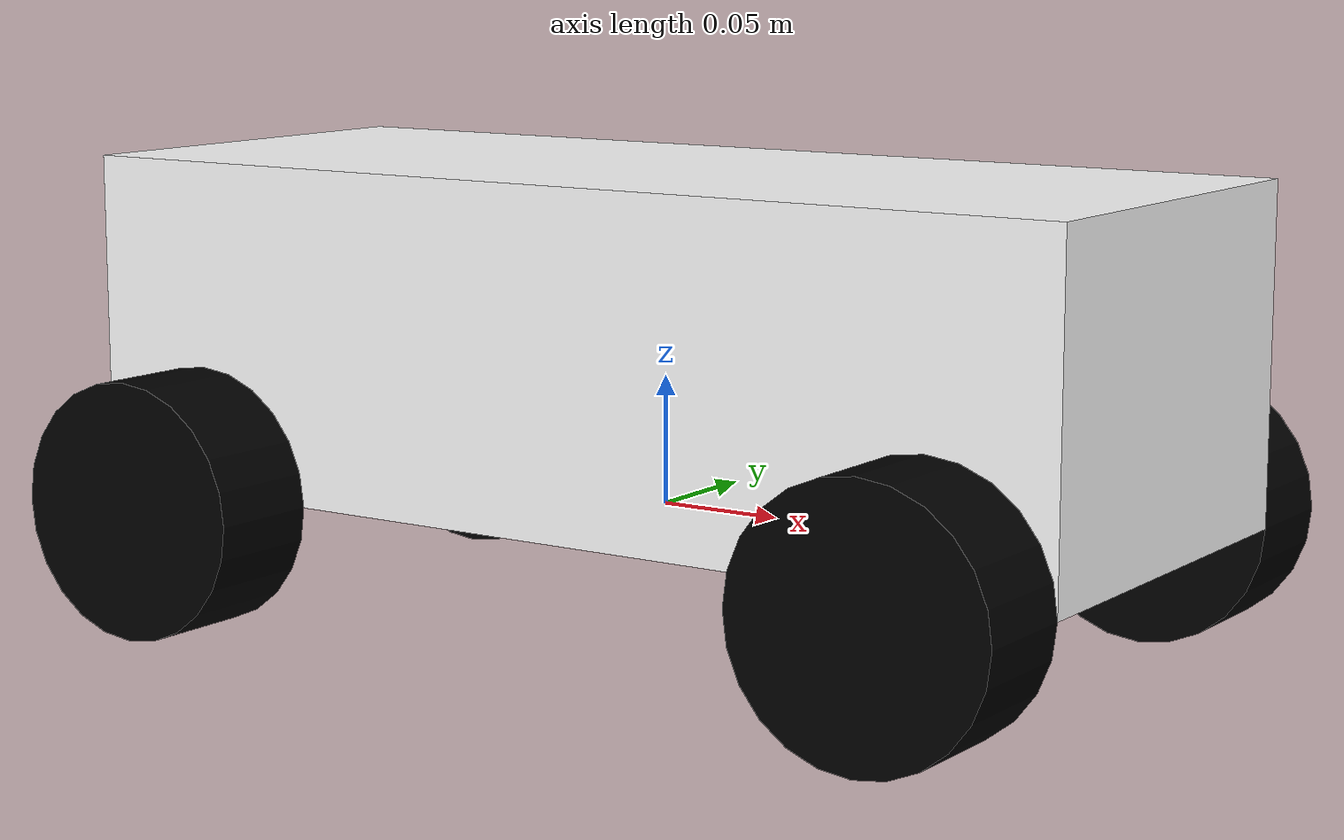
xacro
<?xml version="1.0"?>
<robot xmlns:xacro="http://www.ros.org/wiki/xacro"  >

    <xacro:include filename="inertial_macros.xacro"/>

    <material name="white">
        <color rgba="1 1 1 1" />
    </material>

    <material name="orange">
        <color rgba="1 0.3 0.1 1" />
    </material>

    <material name="blue">
        <color rgba="0.2 0.2 1 1" />
    </material>

    <material name="black">
        <color rgba="0 0 0 1" />
    </material>

    <!-- BASE LINK -->
    <link name="base_link">

    </link>

    <!-- CHASSIS LINK-->

    <joint name="chassis_joint" type="fixed">
        <parent link="base_link"/>
        <child link="chassis"/>
        <origin xyz="-0.21 0 0"/>
    </joint>

    <link name="chassis">
        <visual>
            <origin xyz="0.21 0 0.065"/>
            <geometry>
                <box size="0.42 0.17 0.13"/>
            </geometry>
            <material name="white"/>
        </visual>
        <collision>
            <origin xyz="0.21 0 0.065"/>
            <geometry>
                <box size="0.42 0.17 0.13"/>
            </geometry>
        </collision>
        <xacro:inertial_box mass="0.75" x="0.42" y="0.17" z="0.13">
            <origin xyz="0.21 0 0.065" rpy="0 0 0"/>
        </xacro:inertial_box>

    </link>

    <gazebo reference="chassis">
        <material>Gazebo/White</material>
    </gazebo>

    <!-- REAR LEFT WHEEL -->

    <joint name="rear_left_wheel_joint" type="continuous">
        <parent link="base_link"/>
        <child link="rear_left_wheel"/>
        <origin xyz="-0.16 0.1075 0" rpy="-${pi/2} 0 0"/>
        <axis xyz="0 0 1"/>
    </joint>

    <link name="rear_left_wheel">
        <visual>
            <geometry>
                <cylinder length="0.045" radius="0.05" />
            </geometry>
            <material name="black"/>
        </visual>
        <collision>
            <geometry>
                <cylinder length="0.045" radius="0.05" />
            </geometry>
        </collision>
        <xacro:inertial_cylinder mass="0.1" length="0.045" radius="0.05">
            <origin xyz="0 0 0" rpy="0 0 0"/>
        </xacro:inertial_cylinder>
    </link>

    <gazebo reference="rear_left_wheel">
        <material>Gazebo/Black</material>
    </gazebo>

    <!-- REAR RIGHT WHEEL -->

    <joint name="rear_right_wheel_joint" type="continuous">
        <parent link="base_link"/>
        <child link="rear_right_wheel"/>
        <origin xyz="-0.16 -0.1075 0" rpy="${pi/2} 0 0"/>
        <axis xyz="0 0 -1"/>
    </joint>

    <link name="rear_right_wheel">
        <visual>
            <geometry>
                <cylinder length="0.045" radius="0.05" />
            </geometry>
            <material name="black"/>
        </visual>
        <collision>
            <geometry>
                <cylinder length="0.045" radius="0.05" />
            </geometry>
        </collision>
        <xacro:inertial_cylinder mass="0.1" length="0.045" radius="0.05">
            <origin xyz="0 0 0" rpy="0 0 0"/>
        </xacro:inertial_cylinder>
    </link>

    <gazebo reference="rear_right_wheel">
        <material>Gazebo/Black</material>
    </gazebo>

        <!-- FRONT LEFT WHEEL -->

    <joint name="front_left_wheel_joint" type="continuous">
        <parent link="base_link"/>
        <child link="front_left_wheel"/>
        <origin xyz="0.16 0.1075 0" rpy="-${pi/2} 0 0"/>
        <axis xyz="0 0 1"/>
    </joint>

    <link name="front_left_wheel">
        <visual>
            <geometry>
                <cylinder length="0.045" radius="0.05" />
            </geometry>
            <material name="black"/>
        </visual>
        <collision>
            <geometry>
                <cylinder length="0.045" radius="0.05" />
            </geometry>
        </collision>
        <xacro:inertial_cylinder mass="0.1" length="0.045" radius="0.05">
            <origin xyz="0 0 0" rpy="0 0 0"/>
        </xacro:inertial_cylinder>
    </link>

    <gazebo reference="front_left_wheel">
        <material>Gazebo/Black</material>
    </gazebo>

    <!-- FRONT RIGHT WHEEL -->

    <joint name="front_right_wheel_joint" type="continuous">
        <parent link="base_link"/>
        <child link="front_right_wheel"/>
        <origin xyz="0.16 -0.1075 0" rpy="${pi/2} 0 0"/>
        <axis xyz="0 0 -1"/>
    </joint>

    <link name="front_right_wheel">
        <visual>
            <geometry>
                <cylinder length="0.045" radius="0.05" />
            </geometry>
            <material name="black"/>
        </visual>
        <collision>
            <geometry>
                <cylinder length="0.045" radius="0.05" />
            </geometry>
        </collision>
        <xacro:inertial_cylinder mass="0.1" length="0.045" radius="0.05">
            <origin xyz="0 0 0" rpy="0 0 0"/>
        </xacro:inertial_cylinder>
    </link>

    <gazebo reference="front_right_wheel">
        <material>Gazebo/Black</material>
    </gazebo>

</robot>
